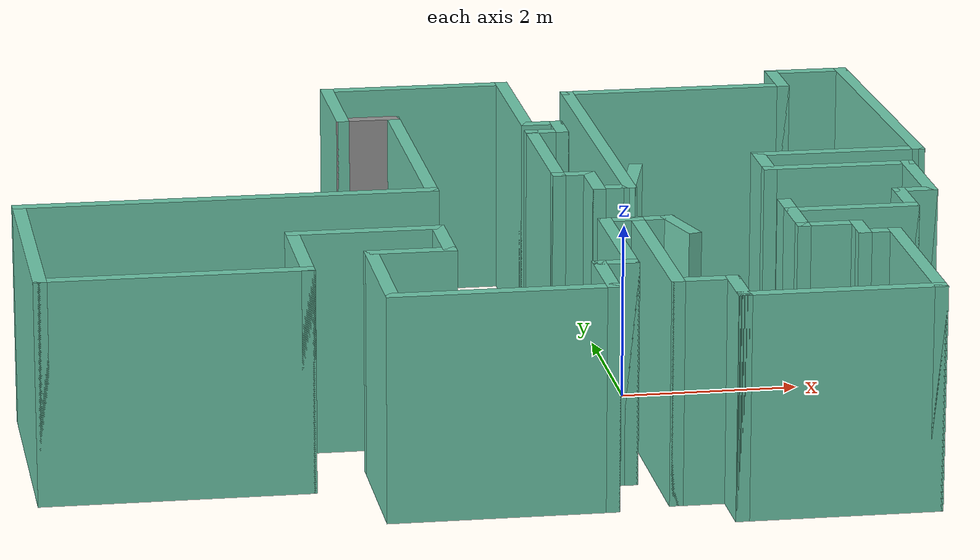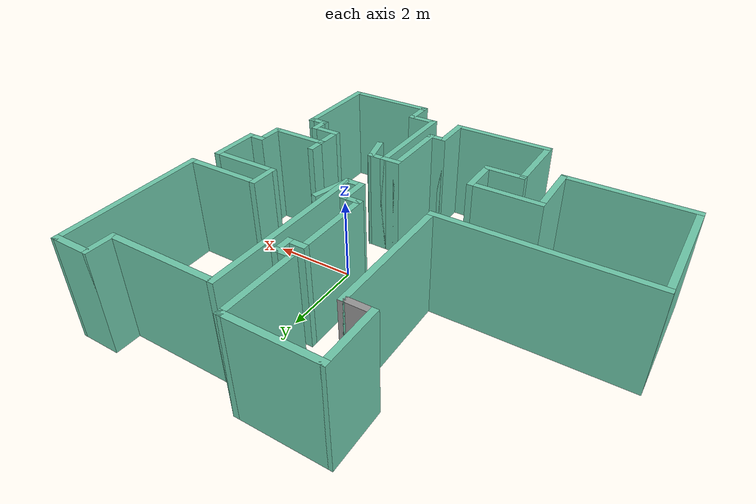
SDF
<?xml version='1.0'?>
<sdf version='1.6'>
  <model name='map_73'>
    <pose frame=''>-1.59376 0.088892 0 0 -0 0</pose>
    <link name='Wall_1'>
      <collision name='Wall_1_Collision'>
        <geometry>
          <box>
            <size>1.5 0.15 2.5</size>
          </box>
        </geometry>
        <pose frame=''>0 0 1.25 0 -0 0</pose>
      </collision>
      <visual name='Wall_1_Visual'>
        <pose frame=''>0 0 1.25 0 -0 0</pose>
        <geometry>
          <box>
            <size>1.5 0.15 2.5</size>
          </box>
        </geometry>
        <material>
          <script>
            <uri>file://media/materials/scripts/gazebo.material</uri>
            <name>Gazebo/Grey</name>
          </script>
          <ambient>0.435294 0.796078 0.67451 1</ambient>
        </material>
        <meta>
          <layer>0</layer>
        </meta>
      </visual>
      <pose frame=''>-1.17603 3.74897 0 0 -0 -1.5708</pose>
    </link>
    <link name='Wall_10'>
      <collision name='Wall_10_Collision'>
        <geometry>
          <box>
            <size>1 0.15 2.5</size>
          </box>
        </geometry>
        <pose frame=''>0 0 1.25 0 -0 0</pose>
      </collision>
      <visual name='Wall_10_Visual'>
        <pose frame=''>0 0 1.25 0 -0 0</pose>
        <geometry>
          <box>
            <size>1 0.15 2.5</size>
          </box>
        </geometry>
        <material>
          <script>
            <uri>file://media/materials/scripts/gazebo.material</uri>
            <name>Gazebo/Grey</name>
          </script>
          <ambient>0.435294 0.796078 0.67451 1</ambient>
        </material>
        <meta>
          <layer>0</layer>
        </meta>
      </visual>
      <pose frame=''>-1.15103 -2.37603 0 0 -0 3.14159</pose>
    </link>
    <link name='Wall_11'>
      <collision name='Wall_11_Collision'>
        <geometry>
          <box>
            <size>1.75 0.15 2.5</size>
          </box>
        </geometry>
        <pose frame=''>0 0 1.25 0 -0 0</pose>
      </collision>
      <visual name='Wall_11_Visual'>
        <pose frame=''>0 0 1.25 0 -0 0</pose>
        <geometry>
          <box>
            <size>1.75 0.15 2.5</size>
          </box>
        </geometry>
        <material>
          <script>
            <uri>file://media/materials/scripts/gazebo.material</uri>
            <name>Gazebo/Grey</name>
          </script>
          <ambient>0.435294 0.796078 0.67451 1</ambient>
        </material>
        <meta>
          <layer>0</layer>
        </meta>
      </visual>
      <pose frame=''>-1.57603 -3.17603 0 0 -0 -1.5708</pose>
    </link>
    <link name='Wall_18'>
      <collision name='Wall_18_Collision'>
        <geometry>
          <box>
            <size>2.5 0.15 2.5</size>
          </box>
        </geometry>
        <pose frame=''>0 0 1.25 0 -0 0</pose>
      </collision>
      <visual name='Wall_18_Visual'>
        <pose frame=''>0 0 1.25 0 -0 0</pose>
        <geometry>
          <box>
            <size>2.5 0.15 2.5</size>
          </box>
        </geometry>
        <material>
          <script>
            <uri>file://media/materials/scripts/gazebo.material</uri>
            <name>Gazebo/Grey</name>
          </script>
          <ambient>0.435294 0.796078 0.67451 1</ambient>
        </material>
        <meta>
          <layer>0</layer>
        </meta>
      </visual>
      <pose frame=''>-0.401027 -3.97603 0 0 -0 0</pose>
    </link>
    <link name='Wall_19'>
      <collision name='Wall_19_Collision'>
        <geometry>
          <box>
            <size>1 0.15 2.5</size>
          </box>
        </geometry>
        <pose frame=''>0 0 1.25 0 -0 0</pose>
      </collision>
      <visual name='Wall_19_Visual'>
        <pose frame=''>0 0 1.25 0 -0 0</pose>
        <geometry>
          <box>
            <size>1 0.15 2.5</size>
          </box>
        </geometry>
        <material>
          <script>
            <uri>file://media/materials/scripts/gazebo.material</uri>
            <name>Gazebo/Grey</name>
          </script>
          <ambient>0.435294 0.796078 0.67451 1</ambient>
        </material>
        <meta>
          <layer>0</layer>
        </meta>
      </visual>
      <pose frame=''>0.773973 -3.55103 0 0 -0 1.5708</pose>
    </link>
    <link name='Wall_2'>
      <collision name='Wall_2_Collision'>
        <geometry>
          <box>
            <size>0.75 0.15 2.5</size>
          </box>
        </geometry>
        <pose frame=''>0 0 1.25 0 -0 0</pose>
      </collision>
      <visual name='Wall_2_Visual'>
        <pose frame=''>0 0 1.25 0 -0 0</pose>
        <geometry>
          <box>
            <size>0.75 0.15 2.5</size>
          </box>
        </geometry>
        <material>
          <script>
            <uri>file://media/materials/scripts/gazebo.material</uri>
            <name>Gazebo/Grey</name>
          </script>
          <ambient>1 1 1 1</ambient>
        </material>
        <meta>
          <layer>0</layer>
        </meta>
      </visual>
      <pose frame=''>-0.876027 3.07397 0 0 -0 0</pose>
    </link>
    <link name='Wall_20'>
      <collision name='Wall_20_Collision'>
        <geometry>
          <box>
            <size>0.5 0.15 2.5</size>
          </box>
        </geometry>
        <pose frame=''>0 0 1.25 0 -0 0</pose>
      </collision>
      <visual name='Wall_20_Visual'>
        <pose frame=''>0 0 1.25 0 -0 0</pose>
        <geometry>
          <box>
            <size>0.5 0.15 2.5</size>
          </box>
        </geometry>
        <material>
          <script>
            <uri>file://media/materials/scripts/gazebo.material</uri>
            <name>Gazebo/Grey</name>
          </script>
          <ambient>0.435294 0.796078 0.67451 1</ambient>
        </material>
        <meta>
          <layer>0</layer>
        </meta>
      </visual>
      <pose frame=''>0.948973 -3.12603 0 0 -0 0</pose>
    </link>
    <link name='Wall_21'>
      <collision name='Wall_21_Collision'>
        <geometry>
          <box>
            <size>1.75 0.15 2.5</size>
          </box>
        </geometry>
        <pose frame=''>0 0 1.25 0 -0 0</pose>
      </collision>
      <visual name='Wall_21_Visual'>
        <pose frame=''>0 0 1.25 0 -0 0</pose>
        <geometry>
          <box>
            <size>1.75 0.15 2.5</size>
          </box>
        </geometry>
        <material>
          <script>
            <uri>file://media/materials/scripts/gazebo.material</uri>
            <name>Gazebo/Grey</name>
          </script>
          <ambient>0.435294 0.796078 0.67451 1</ambient>
        </material>
        <meta>
          <layer>0</layer>
        </meta>
      </visual>
      <pose frame=''>1.12397 -2.32603 0 0 -0 1.5708</pose>
    </link>
    <link name='Wall_22'>
      <collision name='Wall_22_Collision'>
        <geometry>
          <box>
            <size>0.5 0.15 2.5</size>
          </box>
        </geometry>
        <pose frame=''>0 0 1.25 0 -0 0</pose>
      </collision>
      <visual name='Wall_22_Visual'>
        <pose frame=''>0 0 1.25 0 -0 0</pose>
        <geometry>
          <box>
            <size>0.5 0.15 2.5</size>
          </box>
        </geometry>
        <material>
          <script>
            <uri>file://media/materials/scripts/gazebo.material</uri>
            <name>Gazebo/Grey</name>
          </script>
          <ambient>0.435294 0.796078 0.67451 1</ambient>
        </material>
        <meta>
          <layer>0</layer>
        </meta>
      </visual>
      <pose frame=''>1.29897 -1.52603 0 0 -0 0</pose>
    </link>
    <link name='Wall_23'>
      <collision name='Wall_23_Collision'>
        <geometry>
          <box>
            <size>2.5 0.15 2.5</size>
          </box>
        </geometry>
        <pose frame=''>0 0 1.25 0 -0 0</pose>
      </collision>
      <visual name='Wall_23_Visual'>
        <pose frame=''>0 0 1.25 0 -0 0</pose>
        <geometry>
          <box>
            <size>2.5 0.15 2.5</size>
          </box>
        </geometry>
        <material>
          <script>
            <uri>file://media/materials/scripts/gazebo.material</uri>
            <name>Gazebo/Grey</name>
          </script>
          <ambient>0.435294 0.796078 0.67451 1</ambient>
        </material>
        <meta>
          <layer>0</layer>
        </meta>
      </visual>
      <pose frame=''>1.47397 -2.70103 0 0 -0 -1.5708</pose>
    </link>
    <link name='Wall_24'>
      <collision name='Wall_24_Collision'>
        <geometry>
          <box>
            <size>0.75 0.15 2.5</size>
          </box>
        </geometry>
        <pose frame=''>0 0 1.25 0 -0 0</pose>
      </collision>
      <visual name='Wall_24_Visual'>
        <pose frame=''>0 0 1.25 0 -0 0</pose>
        <geometry>
          <box>
            <size>0.75 0.15 2.5</size>
          </box>
        </geometry>
        <material>
          <script>
            <uri>file://media/materials/scripts/gazebo.material</uri>
            <name>Gazebo/Grey</name>
          </script>
          <ambient>0.435294 0.796078 0.67451 1</ambient>
        </material>
        <meta>
          <layer>0</layer>
        </meta>
      </visual>
      <pose frame=''>1.77397 -3.87603 0 0 -0 0</pose>
    </link>
    <link name='Wall_25'>
      <collision name='Wall_25_Collision'>
        <geometry>
          <box>
            <size>0.75 0.15 2.5</size>
          </box>
        </geometry>
        <pose frame=''>0 0 1.25 0 -0 0</pose>
      </collision>
      <visual name='Wall_25_Visual'>
        <pose frame=''>0 0 1.25 0 -0 0</pose>
        <geometry>
          <box>
            <size>0.75 0.15 2.5</size>
          </box>
        </geometry>
        <material>
          <script>
            <uri>file://media/materials/scripts/gazebo.material</uri>
            <name>Gazebo/Grey</name>
          </script>
          <ambient>0.435294 0.796078 0.67451 1</ambient>
        </material>
        <meta>
          <layer>0</layer>
        </meta>
      </visual>
      <pose frame=''>2.07397 -4.17603 0 0 -0 -1.5708</pose>
    </link>
    <link name='Wall_26'>
      <collision name='Wall_26_Collision'>
        <geometry>
          <box>
            <size>2.25 0.15 2.5</size>
          </box>
        </geometry>
        <pose frame=''>0 0 1.25 0 -0 0</pose>
      </collision>
      <visual name='Wall_26_Visual'>
        <pose frame=''>0 0 1.25 0 -0 0</pose>
        <geometry>
          <box>
            <size>2.25 0.15 2.5</size>
          </box>
        </geometry>
        <material>
          <script>
            <uri>file://media/materials/scripts/gazebo.material</uri>
            <name>Gazebo/Grey</name>
          </script>
          <ambient>0.435294 0.796078 0.67451 1</ambient>
        </material>
        <meta>
          <layer>0</layer>
        </meta>
      </visual>
      <pose frame=''>3.12397 -4.47603 0 0 -0 0</pose>
    </link>
    <link name='Wall_27'>
      <collision name='Wall_27_Collision'>
        <geometry>
          <box>
            <size>2.25 0.15 2.5</size>
          </box>
        </geometry>
        <pose frame=''>0 0 1.25 0 -0 0</pose>
      </collision>
      <visual name='Wall_27_Visual'>
        <pose frame=''>0 0 1.25 0 -0 0</pose>
        <geometry>
          <box>
            <size>2.25 0.15 2.5</size>
          </box>
        </geometry>
        <material>
          <script>
            <uri>file://media/materials/scripts/gazebo.material</uri>
            <name>Gazebo/Grey</name>
          </script>
          <ambient>0.435294 0.796078 0.67451 1</ambient>
        </material>
        <meta>
          <layer>0</layer>
        </meta>
      </visual>
      <pose frame=''>4.17397 -3.42603 0 0 -0 1.5708</pose>
    </link>
    <link name='Wall_28'>
      <collision name='Wall_28_Collision'>
        <geometry>
          <box>
            <size>0.5 0.15 2.5</size>
          </box>
        </geometry>
        <pose frame=''>0 0 1.25 0 -0 0</pose>
      </collision>
      <visual name='Wall_28_Visual'>
        <pose frame=''>0 0 1.25 0 -0 0</pose>
        <geometry>
          <box>
            <size>0.5 0.15 2.5</size>
          </box>
        </geometry>
        <material>
          <script>
            <uri>file://media/materials/scripts/gazebo.material</uri>
            <name>Gazebo/Grey</name>
          </script>
          <ambient>0.435294 0.796078 0.67451 1</ambient>
        </material>
        <meta>
          <layer>0</layer>
        </meta>
      </visual>
      <pose frame=''>3.99897 -2.37603 0 0 -0 3.14159</pose>
    </link>
    <link name='Wall_29'>
      <collision name='Wall_29_Collision'>
        <geometry>
          <box>
            <size>0.5 0.15 2.5</size>
          </box>
        </geometry>
        <pose frame=''>0 0 1.25 0 -0 0</pose>
      </collision>
      <visual name='Wall_29_Visual'>
        <pose frame=''>0 0 1.25 0 -0 0</pose>
        <geometry>
          <box>
            <size>0.5 0.15 2.5</size>
          </box>
        </geometry>
        <material>
          <script>
            <uri>file://media/materials/scripts/gazebo.material</uri>
            <name>Gazebo/Grey</name>
          </script>
          <ambient>0.435294 0.796078 0.67451 1</ambient>
        </material>
        <meta>
          <layer>0</layer>
        </meta>
      </visual>
      <pose frame=''>3.82397 -2.20103 0 0 -0 1.5708</pose>
    </link>
    <link name='Wall_3'>
      <collision name='Wall_3_Collision'>
        <geometry>
          <box>
            <size>3.25 0.15 2.5</size>
          </box>
        </geometry>
        <pose frame=''>0 0 1.25 0 -0 0</pose>
      </collision>
      <visual name='Wall_3_Visual'>
        <pose frame=''>0 0 1.25 0 -0 0</pose>
        <geometry>
          <box>
            <size>3.25 0.15 2.5</size>
          </box>
        </geometry>
        <material>
          <script>
            <uri>file://media/materials/scripts/gazebo.material</uri>
            <name>Gazebo/Grey</name>
          </script>
          <ambient>0.435294 0.796078 0.67451 1</ambient>
        </material>
        <meta>
          <layer>0</layer>
        </meta>
      </visual>
      <pose frame=''>-0.576027 1.52397 0 0 -0 -1.5708</pose>
    </link>
    <link name='Wall_30'>
      <collision name='Wall_30_Collision'>
        <geometry>
          <box>
            <size>0.75 0.15 2.5</size>
          </box>
        </geometry>
        <pose frame=''>0 0 1.25 0 -0 0</pose>
      </collision>
      <visual name='Wall_30_Visual'>
        <pose frame=''>0 0 1.25 0 -0 0</pose>
        <geometry>
          <box>
            <size>0.75 0.15 2.5</size>
          </box>
        </geometry>
        <material>
          <script>
            <uri>file://media/materials/scripts/gazebo.material</uri>
            <name>Gazebo/Grey</name>
          </script>
          <ambient>0.435294 0.796078 0.67451 1</ambient>
        </material>
        <meta>
          <layer>0</layer>
        </meta>
      </visual>
      <pose frame=''>3.52397 -2.02603 0 0 -0 3.14159</pose>
    </link>
    <link name='Wall_31'>
      <collision name='Wall_31_Collision'>
        <geometry>
          <box>
            <size>0.75 0.15 2.5</size>
          </box>
        </geometry>
        <pose frame=''>0 0 1.25 0 -0 0</pose>
      </collision>
      <visual name='Wall_31_Visual'>
        <pose frame=''>0 0 1.25 0 -0 0</pose>
        <geometry>
          <box>
            <size>0.75 0.15 2.5</size>
          </box>
        </geometry>
        <material>
          <script>
            <uri>file://media/materials/scripts/gazebo.material</uri>
            <name>Gazebo/Grey</name>
          </script>
          <ambient>0.435294 0.796078 0.67451 1</ambient>
        </material>
        <meta>
          <layer>0</layer>
        </meta>
      </visual>
      <pose frame=''>3.22397 -1.72603 0 0 -0 1.5708</pose>
    </link>
    <link name='Wall_32'>
      <collision name='Wall_32_Collision'>
        <geometry>
          <box>
            <size>1.5 0.15 2.5</size>
          </box>
        </geometry>
        <pose frame=''>0 0 1.25 0 -0 0</pose>
      </collision>
      <visual name='Wall_32_Visual'>
        <pose frame=''>0 0 1.25 0 -0 0</pose>
        <geometry>
          <box>
            <size>1.5 0.15 2.5</size>
          </box>
        </geometry>
        <material>
          <script>
            <uri>file://media/materials/scripts/gazebo.material</uri>
            <name>Gazebo/Grey</name>
          </script>
          <ambient>0.435294 0.796078 0.67451 1</ambient>
        </material>
        <meta>
          <layer>0</layer>
        </meta>
      </visual>
      <pose frame=''>3.89897 -1.42603 0 0 -0 0</pose>
    </link>
    <link name='Wall_33'>
      <collision name='Wall_33_Collision'>
        <geometry>
          <box>
            <size>0.75 0.15 2.5</size>
          </box>
        </geometry>
        <pose frame=''>0 0 1.25 0 -0 0</pose>
      </collision>
      <visual name='Wall_33_Visual'>
        <pose frame=''>0 0 1.25 0 -0 0</pose>
        <geometry>
          <box>
            <size>0.75 0.15 2.5</size>
          </box>
        </geometry>
        <material>
          <script>
            <uri>file://media/materials/scripts/gazebo.material</uri>
            <name>Gazebo/Grey</name>
          </script>
          <ambient>0.435294 0.796078 0.67451 1</ambient>
        </material>
        <meta>
          <layer>0</layer>
        </meta>
      </visual>
      <pose frame=''>4.57397 -1.12603 0 0 -0 1.5708</pose>
    </link>
    <link name='Wall_34'>
      <collision name='Wall_34_Collision'>
        <geometry>
          <box>
            <size>0.5 0.15 2.5</size>
          </box>
        </geometry>
        <pose frame=''>0 0 1.25 0 -0 0</pose>
      </collision>
      <visual name='Wall_34_Visual'>
        <pose frame=''>0 0 1.25 0 -0 0</pose>
        <geometry>
          <box>
            <size>0.5 0.15 2.5</size>
          </box>
        </geometry>
        <material>
          <script>
            <uri>file://media/materials/scripts/gazebo.material</uri>
            <name>Gazebo/Grey</name>
          </script>
          <ambient>0.435294 0.796078 0.67451 1</ambient>
        </material>
        <meta>
          <layer>0</layer>
        </meta>
      </visual>
      <pose frame=''>4.74897 -0.826027 0 0 -0 0</pose>
    </link>
    <link name='Wall_35'>
      <collision name='Wall_35_Collision'>
        <geometry>
          <box>
            <size>1.25 0.15 2.5</size>
          </box>
        </geometry>
        <pose frame=''>0 0 1.25 0 -0 0</pose>
      </collision>
      <visual name='Wall_35_Visual'>
        <pose frame=''>0 0 1.25 0 -0 0</pose>
        <geometry>
          <box>
            <size>1.25 0.15 2.5</size>
          </box>
        </geometry>
        <material>
          <script>
            <uri>file://media/materials/scripts/gazebo.material</uri>
            <name>Gazebo/Grey</name>
          </script>
          <ambient>0.435294 0.796078 0.67451 1</ambient>
        </material>
        <meta>
          <layer>0</layer>
        </meta>
      </visual>
      <pose frame=''>4.92397 -0.276027 0 0 -0 1.5708</pose>
    </link>
    <link name='Wall_36'>
      <collision name='Wall_36_Collision'>
        <geometry>
          <box>
            <size>1.75 0.15 2.5</size>
          </box>
        </geometry>
        <pose frame=''>0 0 1.25 0 -0 0</pose>
      </collision>
      <visual name='Wall_36_Visual'>
        <pose frame=''>0 0 1.25 0 -0 0</pose>
        <geometry>
          <box>
            <size>1.75 0.15 2.5</size>
          </box>
        </geometry>
        <material>
          <script>
            <uri>file://media/materials/scripts/gazebo.material</uri>
            <name>Gazebo/Grey</name>
          </script>
          <ambient>0.435294 0.796078 0.67451 1</ambient>
        </material>
        <meta>
          <layer>0</layer>
        </meta>
      </visual>
      <pose frame=''>4.12397 0.273973 0 0 -0 3.14159</pose>
    </link>
    <link name='Wall_37'>
      <collision name='Wall_37_Collision'>
        <geometry>
          <box>
            <size>0.75 0.15 2.5</size>
          </box>
        </geometry>
        <pose frame=''>0 0 1.25 0 -0 0</pose>
      </collision>
      <visual name='Wall_37_Visual'>
        <pose frame=''>0 0 1.25 0 -0 0</pose>
        <geometry>
          <box>
            <size>0.75 0.15 2.5</size>
          </box>
        </geometry>
        <material>
          <script>
            <uri>file://media/materials/scripts/gazebo.material</uri>
            <name>Gazebo/Grey</name>
          </script>
          <ambient>0.435294 0.796078 0.67451 1</ambient>
        </material>
        <meta>
          <layer>0</layer>
        </meta>
      </visual>
      <pose frame=''>3.32397 0.573973 0 0 -0 1.5708</pose>
    </link>
    <link name='Wall_38'>
      <collision name='Wall_38_Collision'>
        <geometry>
          <box>
            <size>2 0.15 2.5</size>
          </box>
        </geometry>
        <pose frame=''>0 0 1.25 0 -0 0</pose>
      </collision>
      <visual name='Wall_38_Visual'>
        <pose frame=''>0 0 1.25 0 -0 0</pose>
        <geometry>
          <box>
            <size>2 0.15 2.5</size>
          </box>
        </geometry>
        <material>
          <script>
            <uri>file://media/materials/scripts/gazebo.material</uri>
            <name>Gazebo/Grey</name>
          </script>
          <ambient>0.435294 0.796078 0.67451 1</ambient>
        </material>
        <meta>
          <layer>0</layer>
        </meta>
      </visual>
      <pose frame=''>4.24897 0.873973 0 0 -0 0</pose>
    </link>
    <link name='Wall_4'>
      <collision name='Wall_4_Collision'>
        <geometry>
          <box>
            <size>4.75 0.15 2.5</size>
          </box>
        </geometry>
        <pose frame=''>0 0 1.25 0 -0 0</pose>
      </collision>
      <visual name='Wall_4_Visual'>
        <pose frame=''>0 0 1.25 0 -0 0</pose>
        <geometry>
          <box>
            <size>4.75 0.15 2.5</size>
          </box>
        </geometry>
        <material>
          <script>
            <uri>file://media/materials/scripts/gazebo.material</uri>
            <name>Gazebo/Grey</name>
          </script>
          <ambient>0.435294 0.796078 0.67451 1</ambient>
        </material>
        <meta>
          <layer>0</layer>
        </meta>
      </visual>
      <pose frame=''>-2.87603 -0.026027 0 0 -0 3.14159</pose>
    </link>
    <link name='Wall_40'>
      <collision name='Wall_40_Collision'>
        <geometry>
          <box>
            <size>0.5 0.15 2.5</size>
          </box>
        </geometry>
        <pose frame=''>0 0 1.25 0 -0 0</pose>
      </collision>
      <visual name='Wall_40_Visual'>
        <pose frame=''>0 0 1.25 0 -0 0</pose>
        <geometry>
          <box>
            <size>0.5 0.15 2.5</size>
          </box>
        </geometry>
        <material>
          <script>
            <uri>file://media/materials/scripts/gazebo.material</uri>
            <name>Gazebo/Grey</name>
          </script>
          <ambient>0.435294 0.796078 0.67451 1</ambient>
        </material>
        <meta>
          <layer>0</layer>
        </meta>
      </visual>
      <pose frame=''>1.64897 -1.52603 0 0 -0 0</pose>
    </link>
    <link name='Wall_41'>
      <collision name='Wall_41_Collision'>
        <geometry>
          <box>
            <size>0.75 0.15 2.5</size>
          </box>
        </geometry>
        <pose frame=''>0 0 1.25 0 -0 0</pose>
      </collision>
      <visual name='Wall_41_Visual'>
        <pose frame=''>0 0 1.25 0 -0 0</pose>
        <geometry>
          <box>
            <size>0.75 0.15 2.5</size>
          </box>
        </geometry>
        <material>
          <script>
            <uri>file://media/materials/scripts/gazebo.material</uri>
            <name>Gazebo/Grey</name>
          </script>
          <ambient>0.435294 0.796078 0.67451 1</ambient>
        </material>
        <meta>
          <layer>0</layer>
        </meta>
      </visual>
      <pose frame=''>1.90162 -1.8158 0 0 -0 -1.309</pose>
    </link>
    <link name='Wall_43'>
      <collision name='Wall_43_Collision'>
        <geometry>
          <box>
            <size>0.5 0.15 2.5</size>
          </box>
        </geometry>
        <pose frame=''>0 0 1.25 0 -0 0</pose>
      </collision>
      <visual name='Wall_43_Visual'>
        <pose frame=''>0 0 1.25 0 -0 0</pose>
        <geometry>
          <box>
            <size>0.5 0.15 2.5</size>
          </box>
        </geometry>
        <material>
          <script>
            <uri>file://media/materials/scripts/gazebo.material</uri>
            <name>Gazebo/Grey</name>
          </script>
          <ambient>0.435294 0.796078 0.67451 1</ambient>
        </material>
        <meta>
          <layer>0</layer>
        </meta>
      </visual>
      <pose frame=''>3.22397 -1.25103 0 0 -0 1.5708</pose>
    </link>
    <link name='Wall_5'>
      <collision name='Wall_5_Collision'>
        <geometry>
          <box>
            <size>3 0.15 2.5</size>
          </box>
        </geometry>
        <pose frame=''>0 0 1.25 0 -0 0</pose>
      </collision>
      <visual name='Wall_5_Visual'>
        <pose frame=''>0 0 1.25 0 -0 0</pose>
        <geometry>
          <box>
            <size>3 0.15 2.5</size>
          </box>
        </geometry>
        <material>
          <script>
            <uri>file://media/materials/scripts/gazebo.material</uri>
            <name>Gazebo/Grey</name>
          </script>
          <ambient>0.435294 0.796078 0.67451 1</ambient>
        </material>
        <meta>
          <layer>0</layer>
        </meta>
      </visual>
      <pose frame=''>-5.17603 -1.45103 0 0 -0 -1.5708</pose>
    </link>
    <link name='Wall_54'>
      <collision name='Wall_54_Collision'>
        <geometry>
          <box>
            <size>2.25 0.15 2.5</size>
          </box>
        </geometry>
        <pose frame=''>0 0 1.25 0 -0 0</pose>
      </collision>
      <visual name='Wall_54_Visual'>
        <pose frame=''>0 0 1.25 0 -0 0</pose>
        <geometry>
          <box>
            <size>2.25 0.15 2.5</size>
          </box>
        </geometry>
        <material>
          <script>
            <uri>file://media/materials/scripts/gazebo.material</uri>
            <name>Gazebo/Grey</name>
          </script>
          <ambient>0.435294 0.796078 0.67451 1</ambient>
        </material>
        <meta>
          <layer>0</layer>
        </meta>
      </visual>
      <pose frame=''>-0.126027 4.42397 0 0 -0 0</pose>
    </link>
    <link name='Wall_55'>
      <collision name='Wall_55_Collision'>
        <geometry>
          <box>
            <size>2 0.15 2.5</size>
          </box>
        </geometry>
        <pose frame=''>0 0 1.25 0 -0 0</pose>
      </collision>
      <visual name='Wall_55_Visual'>
        <pose frame=''>0 0 1.25 0 -0 0</pose>
        <geometry>
          <box>
            <size>2 0.15 2.5</size>
          </box>
        </geometry>
        <material>
          <script>
            <uri>file://media/materials/scripts/gazebo.material</uri>
            <name>Gazebo/Grey</name>
          </script>
          <ambient>0.435294 0.796078 0.67451 1</ambient>
        </material>
        <meta>
          <layer>0</layer>
        </meta>
      </visual>
      <pose frame=''>0.923973 3.49897 0 0 -0 -1.5708</pose>
    </link>
    <link name='Wall_56'>
      <collision name='Wall_56_Collision'>
        <geometry>
          <box>
            <size>0.5 0.15 2.5</size>
          </box>
        </geometry>
        <pose frame=''>0 0 1.25 0 -0 0</pose>
      </collision>
      <visual name='Wall_56_Visual'>
        <pose frame=''>0 0 1.25 0 -0 0</pose>
        <geometry>
          <box>
            <size>0.5 0.15 2.5</size>
          </box>
        </geometry>
        <material>
          <script>
            <uri>file://media/materials/scripts/gazebo.material</uri>
            <name>Gazebo/Grey</name>
          </script>
          <ambient>0.435294 0.796078 0.67451 1</ambient>
        </material>
        <meta>
          <layer>0</layer>
        </meta>
      </visual>
      <pose frame=''>1.09897 2.57397 0 0 -0 0</pose>
    </link>
    <link name='Wall_59'>
      <collision name='Wall_59_Collision'>
        <geometry>
          <box>
            <size>0.5 0.15 2.5</size>
          </box>
        </geometry>
        <pose frame=''>0 0 1.25 0 -0 0</pose>
      </collision>
      <visual name='Wall_59_Visual'>
        <pose frame=''>0 0 1.25 0 -0 0</pose>
        <geometry>
          <box>
            <size>0.5 0.15 2.5</size>
          </box>
        </geometry>
        <material>
          <script>
            <uri>file://media/materials/scripts/gazebo.material</uri>
            <name>Gazebo/Grey</name>
          </script>
          <ambient>0.435294 0.796078 0.67451 1</ambient>
        </material>
        <meta>
          <layer>0</layer>
        </meta>
      </visual>
      <pose frame=''>1.27397 2.39897 0 0 -0 -1.5708</pose>
    </link>
    <link name='Wall_6'>
      <collision name='Wall_6_Collision'>
        <geometry>
          <box>
            <size>3 0.15 2.5</size>
          </box>
        </geometry>
        <pose frame=''>0 0 1.25 0 -0 0</pose>
      </collision>
      <visual name='Wall_6_Visual'>
        <pose frame=''>0 0 1.25 0 -0 0</pose>
        <geometry>
          <box>
            <size>3 0.15 2.5</size>
          </box>
        </geometry>
        <material>
          <script>
            <uri>file://media/materials/scripts/gazebo.material</uri>
            <name>Gazebo/Grey</name>
          </script>
          <ambient>0.435294 0.796078 0.67451 1</ambient>
        </material>
        <meta>
          <layer>0</layer>
        </meta>
      </visual>
      <pose frame=''>-3.75103 -2.87603 0 0 -0 0</pose>
    </link>
    <link name='Wall_60'>
      <collision name='Wall_60_Collision'>
        <geometry>
          <box>
            <size>0.5 0.15 2.5</size>
          </box>
        </geometry>
        <pose frame=''>0 0 1.25 0 -0 0</pose>
      </collision>
      <visual name='Wall_60_Visual'>
        <pose frame=''>0 0 1.25 0 -0 0</pose>
        <geometry>
          <box>
            <size>0.5 0.15 2.5</size>
          </box>
        </geometry>
        <material>
          <script>
            <uri>file://media/materials/scripts/gazebo.material</uri>
            <name>Gazebo/Grey</name>
          </script>
          <ambient>0.435294 0.796078 0.67451 1</ambient>
        </material>
        <meta>
          <layer>0</layer>
        </meta>
      </visual>
      <pose frame=''>1.09897 2.22397 0 0 -0 3.14159</pose>
    </link>
    <link name='Wall_61'>
      <collision name='Wall_61_Collision'>
        <geometry>
          <box>
            <size>2 0.15 2.5</size>
          </box>
        </geometry>
        <pose frame=''>0 0 1.25 0 -0 0</pose>
      </collision>
      <visual name='Wall_61_Visual'>
        <pose frame=''>0 0 1.25 0 -0 0</pose>
        <geometry>
          <box>
            <size>2 0.15 2.5</size>
          </box>
        </geometry>
        <material>
          <script>
            <uri>file://media/materials/scripts/gazebo.material</uri>
            <name>Gazebo/Grey</name>
          </script>
          <ambient>0.435294 0.796078 0.67451 1</ambient>
        </material>
        <meta>
          <layer>0</layer>
        </meta>
      </visual>
      <pose frame=''>0.923973 1.29897 0 0 -0 -1.5708</pose>
    </link>
    <link name='Wall_62'>
      <collision name='Wall_62_Collision'>
        <geometry>
          <box>
            <size>0.5 0.15 2.5</size>
          </box>
        </geometry>
        <pose frame=''>0 0 1.25 0 -0 0</pose>
      </collision>
      <visual name='Wall_62_Visual'>
        <pose frame=''>0 0 1.25 0 -0 0</pose>
        <geometry>
          <box>
            <size>0.5 0.15 2.5</size>
          </box>
        </geometry>
        <material>
          <script>
            <uri>file://media/materials/scripts/gazebo.material</uri>
            <name>Gazebo/Grey</name>
          </script>
          <ambient>0.435294 0.796078 0.67451 1</ambient>
        </material>
        <meta>
          <layer>0</layer>
        </meta>
      </visual>
      <pose frame=''>1.09897 0.373973 0 0 -0 0</pose>
    </link>
    <link name='Wall_63'>
      <collision name='Wall_63_Collision'>
        <geometry>
          <box>
            <size>0.75 0.15 2.5</size>
          </box>
        </geometry>
        <pose frame=''>0 0 1.25 0 -0 0</pose>
      </collision>
      <visual name='Wall_63_Visual'>
        <pose frame=''>0 0 1.25 0 -0 0</pose>
        <geometry>
          <box>
            <size>0.75 0.15 2.5</size>
          </box>
        </geometry>
        <material>
          <script>
            <uri>file://media/materials/scripts/gazebo.material</uri>
            <name>Gazebo/Grey</name>
          </script>
          <ambient>0.435294 0.796078 0.67451 1</ambient>
        </material>
        <meta>
          <layer>0</layer>
        </meta>
      </visual>
      <pose frame=''>1.27397 0.073973 0 0 -0 -1.5708</pose>
    </link>
    <link name='Wall_64'>
      <collision name='Wall_64_Collision'>
        <geometry>
          <box>
            <size>0.5 0.15 2.5</size>
          </box>
        </geometry>
        <pose frame=''>0 0 1.25 0 -0 0</pose>
      </collision>
      <visual name='Wall_64_Visual'>
        <pose frame=''>0 0 1.25 0 -0 0</pose>
        <geometry>
          <box>
            <size>0.5 0.15 2.5</size>
          </box>
        </geometry>
        <material>
          <script>
            <uri>file://media/materials/scripts/gazebo.material</uri>
            <name>Gazebo/Grey</name>
          </script>
          <ambient>0.435294 0.796078 0.67451 1</ambient>
        </material>
        <meta>
          <layer>0</layer>
        </meta>
      </visual>
      <pose frame=''>1.44897 -0.226027 0 0 -0 0</pose>
    </link>
    <link name='Wall_65'>
      <collision name='Wall_65_Collision'>
        <geometry>
          <box>
            <size>4.25 0.15 2.5</size>
          </box>
        </geometry>
        <pose frame=''>0 0 1.25 0 -0 0</pose>
      </collision>
      <visual name='Wall_65_Visual'>
        <pose frame=''>0 0 1.25 0 -0 0</pose>
        <geometry>
          <box>
            <size>4.25 0.15 2.5</size>
          </box>
        </geometry>
        <material>
          <script>
            <uri>file://media/materials/scripts/gazebo.material</uri>
            <name>Gazebo/Grey</name>
          </script>
          <ambient>0.435294 0.796078 0.67451 1</ambient>
        </material>
        <meta>
          <layer>0</layer>
        </meta>
      </visual>
      <pose frame=''>1.62397 1.82397 0 0 -0 1.5708</pose>
    </link>
    <link name='Wall_66'>
      <collision name='Wall_66_Collision'>
        <geometry>
          <box>
            <size>2.75 0.15 2.5</size>
          </box>
        </geometry>
        <pose frame=''>0 0 1.25 0 -0 0</pose>
      </collision>
      <visual name='Wall_66_Visual'>
        <pose frame=''>0 0 1.25 0 -0 0</pose>
        <geometry>
          <box>
            <size>2.75 0.15 2.5</size>
          </box>
        </geometry>
        <material>
          <script>
            <uri>file://media/materials/scripts/gazebo.material</uri>
            <name>Gazebo/Grey</name>
          </script>
          <ambient>0.435294 0.796078 0.67451 1</ambient>
        </material>
        <meta>
          <layer>0</layer>
        </meta>
      </visual>
      <pose frame=''>2.92397 3.87397 0 0 -0 0</pose>
    </link>
    <link name='Wall_67'>
      <collision name='Wall_67_Collision'>
        <geometry>
          <box>
            <size>0.75 0.15 2.5</size>
          </box>
        </geometry>
        <pose frame=''>0 0 1.25 0 -0 0</pose>
      </collision>
      <visual name='Wall_67_Visual'>
        <pose frame=''>0 0 1.25 0 -0 0</pose>
        <geometry>
          <box>
            <size>0.75 0.15 2.5</size>
          </box>
        </geometry>
        <material>
          <script>
            <uri>file://media/materials/scripts/gazebo.material</uri>
            <name>Gazebo/Grey</name>
          </script>
          <ambient>0.435294 0.796078 0.67451 1</ambient>
        </material>
        <meta>
          <layer>0</layer>
        </meta>
      </visual>
      <pose frame=''>4.22397 4.17397 0 0 -0 1.5708</pose>
    </link>
    <link name='Wall_68'>
      <collision name='Wall_68_Collision'>
        <geometry>
          <box>
            <size>1 0.15 2.5</size>
          </box>
        </geometry>
        <pose frame=''>0 0 1.25 0 -0 0</pose>
      </collision>
      <visual name='Wall_68_Visual'>
        <pose frame=''>0 0 1.25 0 -0 0</pose>
        <geometry>
          <box>
            <size>1 0.15 2.5</size>
          </box>
        </geometry>
        <material>
          <script>
            <uri>file://media/materials/scripts/gazebo.material</uri>
            <name>Gazebo/Grey</name>
          </script>
          <ambient>0.435294 0.796078 0.67451 1</ambient>
        </material>
        <meta>
          <layer>0</layer>
        </meta>
      </visual>
      <pose frame=''>4.64897 4.47397 0 0 -0 0</pose>
    </link>
    <link name='Wall_69'>
      <collision name='Wall_69_Collision'>
        <geometry>
          <box>
            <size>3.75139 0.15 2.5</size>
          </box>
        </geometry>
        <pose frame=''>0 0 1.25 0 -0 0</pose>
      </collision>
      <visual name='Wall_69_Visual'>
        <pose frame=''>0 0 1.25 0 -0 0</pose>
        <geometry>
          <box>
            <size>3.75139 0.15 2.5</size>
          </box>
        </geometry>
        <material>
          <script>
            <uri>file://media/materials/scripts/gazebo.material</uri>
            <name>Gazebo/Grey</name>
          </script>
          <ambient>0.435294 0.796078 0.67451 1</ambient>
        </material>
        <meta>
          <layer>0</layer>
        </meta>
      </visual>
      <pose frame=''>5.12397 2.67397 0 0 -0 -1.54303</pose>
    </link>
    <link name='Wall_7'>
      <collision name='Wall_7_Collision'>
        <geometry>
          <box>
            <size>1.5 0.15 2.5</size>
          </box>
        </geometry>
        <pose frame=''>0 0 1.25 0 -0 0</pose>
      </collision>
      <visual name='Wall_7_Visual'>
        <pose frame=''>0 0 1.25 0 -0 0</pose>
        <geometry>
          <box>
            <size>1.5 0.15 2.5</size>
          </box>
        </geometry>
        <material>
          <script>
            <uri>file://media/materials/scripts/gazebo.material</uri>
            <name>Gazebo/Grey</name>
          </script>
          <ambient>0.435294 0.796078 0.67451 1</ambient>
        </material>
        <meta>
          <layer>0</layer>
        </meta>
      </visual>
      <pose frame=''>-2.32603 -2.20103 0 0 -0 1.5708</pose>
    </link>
    <link name='Wall_72'>
      <collision name='Wall_72_Collision'>
        <geometry>
          <box>
            <size>1 0.15 2.5</size>
          </box>
        </geometry>
        <pose frame=''>0 0 1.25 0 -0 0</pose>
      </collision>
      <visual name='Wall_72_Visual'>
        <pose frame=''>0 0 1.25 0 -0 0</pose>
        <geometry>
          <box>
            <size>1 0.15 2.5</size>
          </box>
        </geometry>
        <material>
          <script>
            <uri>file://media/materials/scripts/gazebo.material</uri>
            <name>Gazebo/Grey</name>
          </script>
          <ambient>0.435294 0.796078 0.67451 1</ambient>
        </material>
        <meta>
          <layer>0</layer>
        </meta>
      </visual>
      <pose frame=''>1.73397 0.184492 0 0 -0 1.309</pose>
    </link>
    <link name='Wall_8'>
      <collision name='Wall_8_Collision'>
        <geometry>
          <box>
            <size>1.75 0.15 2.5</size>
          </box>
        </geometry>
        <pose frame=''>0 0 1.25 0 -0 0</pose>
      </collision>
      <visual name='Wall_8_Visual'>
        <pose frame=''>0 0 1.25 0 -0 0</pose>
        <geometry>
          <box>
            <size>1.75 0.15 2.5</size>
          </box>
        </geometry>
        <material>
          <script>
            <uri>file://media/materials/scripts/gazebo.material</uri>
            <name>Gazebo/Grey</name>
          </script>
          <ambient>0.435294 0.796078 0.67451 1</ambient>
        </material>
        <meta>
          <layer>0</layer>
        </meta>
      </visual>
      <pose frame=''>-1.52603 -1.52603 0 0 -0 0</pose>
    </link>
    <link name='Wall_9'>
      <collision name='Wall_9_Collision'>
        <geometry>
          <box>
            <size>1 0.15 2.5</size>
          </box>
        </geometry>
        <pose frame=''>0 0 1.25 0 -0 0</pose>
      </collision>
      <visual name='Wall_9_Visual'>
        <pose frame=''>0 0 1.25 0 -0 0</pose>
        <geometry>
          <box>
            <size>1 0.15 2.5</size>
          </box>
        </geometry>
        <material>
          <script>
            <uri>file://media/materials/scripts/gazebo.material</uri>
            <name>Gazebo/Grey</name>
          </script>
          <ambient>0.435294 0.796078 0.67451 1</ambient>
        </material>
        <meta>
          <layer>0</layer>
        </meta>
      </visual>
      <pose frame=''>-0.726027 -1.95103 0 0 -0 -1.5708</pose>
    </link>
    <static>1</static>
  </model>
</sdf>
